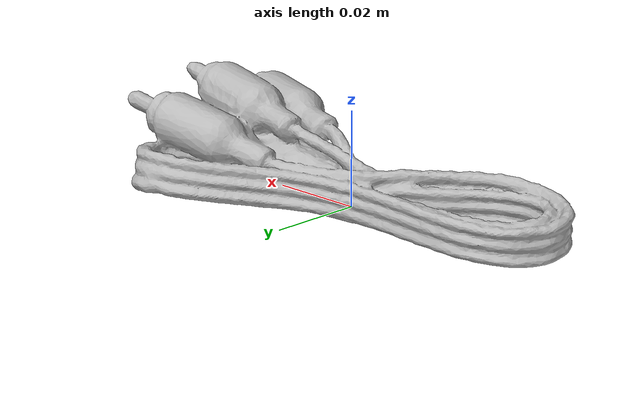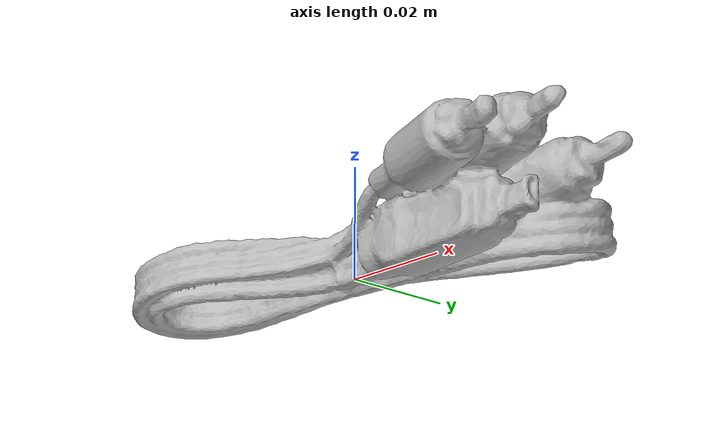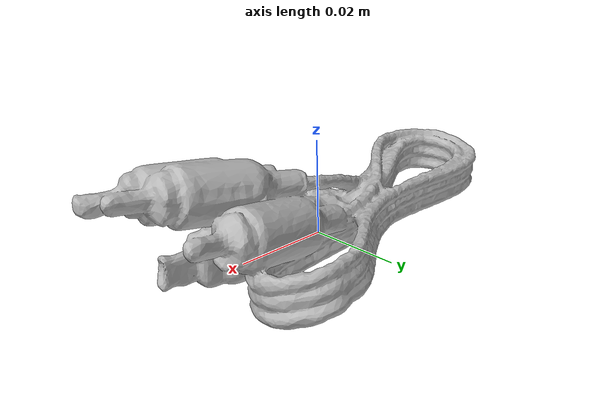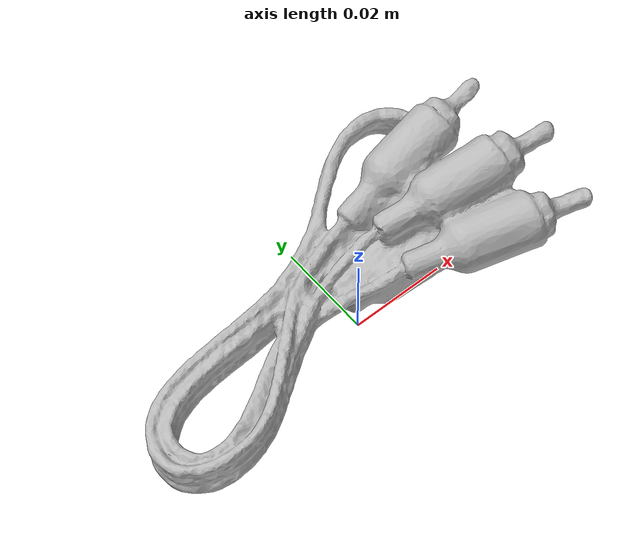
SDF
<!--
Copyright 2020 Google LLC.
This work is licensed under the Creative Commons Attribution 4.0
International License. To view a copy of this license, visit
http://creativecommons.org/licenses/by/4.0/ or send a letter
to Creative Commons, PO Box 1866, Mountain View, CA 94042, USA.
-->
<?xml version="1.0" ?>
<sdf version="1.6">
  <model name="Toys_R_Us_Treat_Dispenser_Smart_Puzzle_Foobler">
    <link name="link_0">
      <visual name="visual">
        <geometry>
          <mesh>
            <uri>meshes/model.obj</uri>
          </mesh>
        </geometry>
      </visual>
      <collision name="collision_0">
        <geometry>
          <mesh>
            <uri>meshes/model.obj</uri>
          </mesh>
        </geometry>
      </collision>
    </link>
  </model>
</sdf>
